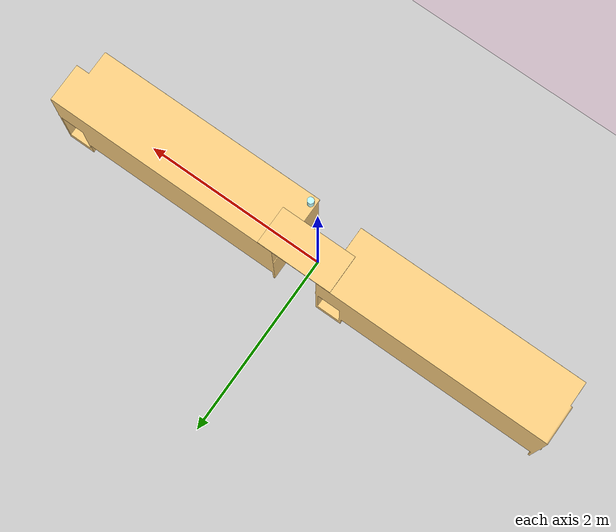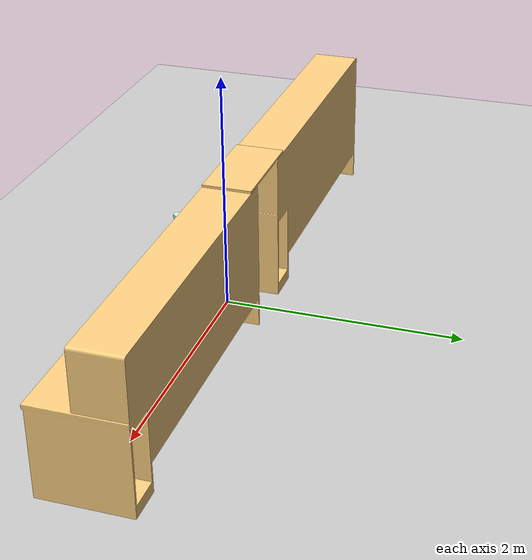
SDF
<sdf version='1.10'>
  <world name='empty'>
    <physics name='1ms' type='ignored'>
      <max_step_size>0.001</max_step_size>
      <real_time_factor>1</real_time_factor>
      <real_time_update_rate>1000</real_time_update_rate>
    </physics>
    <plugin name='gz::sim::systems::Physics' filename='gz-sim-physics-system'/>
    <plugin name='gz::sim::systems::UserCommands' filename='gz-sim-user-commands-system'/>
    <plugin name='gz::sim::systems::SceneBroadcaster' filename='gz-sim-scene-broadcaster-system'/>
    <plugin name='gz::sim::systems::Contact' filename='gz-sim-contact-system'/>
    <gravity>0 0 -9.8000000000000007</gravity>
    <magnetic_field>5.5644999999999998e-06 2.2875799999999999e-05 -4.2388400000000002e-05</magnetic_field>
    <atmosphere type='adiabatic'/>
    <scene>
      <ambient>0.400000006 0.400000006 0.400000006 1</ambient>
      <background>0.699999988 0.699999988 0.699999988 1</background>
      <shadows>true</shadows>
    </scene>
    <model name='ground_plane'>
      <static>true</static>
      <link name='link'>
        <collision name='collision'>
          <geometry>
            <plane>
              <normal>0 0 1</normal>
              <size>100 100</size>
            </plane>
          </geometry>
        </collision>
        <visual name='visual'>
          <geometry>
            <plane>
              <normal>0 0 1</normal>
              <size>100 100</size>
            </plane>
          </geometry>
          <material>
            <ambient>0.800000012 0.800000012 0.800000012 1</ambient>
            <diffuse>0.800000012 0.800000012 0.800000012 1</diffuse>
            <specular>0.800000012 0.800000012 0.800000012 1</specular>
          </material>
        </visual>
        <pose>0 0 0 0 0 0</pose>
        <inertial>
          <pose>0 0 0 0 0 0</pose>
          <mass>1</mass>
          <inertia>
            <ixx>1</ixx>
            <ixy>0</ixy>
            <ixz>0</ixz>
            <iyy>1</iyy>
            <iyz>0</iyz>
            <izz>1</izz>
          </inertia>
        </inertial>
        <enable_wind>false</enable_wind>
      </link>
      <pose>0 0 0 0 0 0</pose>
      <self_collide>false</self_collide>
    </model>
    <model name='daadbot'>
      <joint name='table_joint' type='fixed'>
        <pose>0 0 0 0 0 0</pose>
        <parent>world</parent>
        <child>table_top</child>
      </joint>
      <link name='table_top'>
        <pose>0 0 0 0 0 0</pose>
        <inertial>
          <pose>0.037556625273006503 0.1187234636742408 1.213559996214189 0 0 0</pose>
          <mass>4.3002000000000002</mass>
          <inertia>
            <ixx>0.21852720258128411</ixx>
            <ixy>0.057220156535226371</ixy>
            <ixz>0.04949839947141102</ixz>
            <iyy>0.3122479666049145</iyy>
            <iyz>-0.081760943047373025</iyz>
            <izz>0.38527938088341529</izz>
          </inertia>
        </inertial>
        <collision name='table_top_collision'>
          <pose>0 0 0 0 0 0</pose>
          <geometry>
            <mesh>
              <scale>1 1 1</scale>
              <uri>file:///home/maryam-mahmood/udaadbot_ws/src/daadbot_desc/meshes_lab_table/base_link.STL</uri>
            </mesh>
          </geometry>
        </collision>
        <collision name='table_top_fixed_joint_lump__bottle_link_collision_1'>
          <pose>0.28499999999999998 -0.28999999999999998 0.85999999999999999 0 0 0</pose>
          <geometry>
            <cylinder>
              <length>0.12</length>
              <radius>0.035000000000000003</radius>
            </cylinder>
          </geometry>
          <surface>
            <contact>
              <ode>
                <kp>100000</kp>
                <kd>10</kd>
                <min_depth>0.001</min_depth>
              </ode>
            </contact>
            <friction>
              <ode>
                <mu>0.80000000000000004</mu>
                <mu2>0.80000000000000004</mu2>
              </ode>
            </friction>
          </surface>
        </collision>
        <collision name='table_top_fixed_joint_lump__table_link1_collision_2'>
          <pose>0.0050000000000000001 0.17249999999999999 1.27 -1.5708 4.2351647362715017e-22 -3.1415853071795872</pose>
          <geometry>
            <mesh>
              <scale>1 1 1</scale>
              <uri>file:///home/maryam-mahmood/udaadbot_ws/src/daadbot_desc/meshes_lab_table/link1.STL</uri>
            </mesh>
          </geometry>
        </collision>
        <visual name='table_top_visual'>
          <pose>0 0 0 0 0 0</pose>
          <geometry>
            <mesh>
              <scale>1 1 1</scale>
              <uri>file:///home/maryam-mahmood/udaadbot_ws/src/daadbot_desc/meshes_lab_table/base_link.STL</uri>
            </mesh>
          </geometry>
          <material>
            <diffuse>1 0.825000048 0.512499988 1</diffuse>
            <ambient>1 0.825000048 0.512499988 1</ambient>
          </material>
        </visual>
        <visual name='table_top_fixed_joint_lump__bottle_link_visual_1'>
          <pose>0.28499999999999998 -0.28999999999999998 0.85999999999999999 0 0 0</pose>
          <geometry>
            <cylinder>
              <length>0.12</length>
              <radius>0.035000000000000003</radius>
            </cylinder>
          </geometry>
          <material>
            <diffuse>0.75000006 1 1 1</diffuse>
            <ambient>0.75000006 1 1 1</ambient>
          </material>
        </visual>
        <visual name='table_top_fixed_joint_lump__table_link1_visual_2'>
          <pose>0.0050000000000000001 0.17249999999999999 1.27 -1.5708 4.2351647362715017e-22 -3.1415853071795872</pose>
          <geometry>
            <mesh>
              <scale>1 1 1</scale>
              <uri>file:///home/maryam-mahmood/udaadbot_ws/src/daadbot_desc/meshes_lab_table/link1.STL</uri>
            </mesh>
          </geometry>
          <material>
            <diffuse>1 0.825000048 0.512499988 1</diffuse>
            <ambient>1 0.825000048 0.512499988 1</ambient>
          </material>
        </visual>
        <enable_wind>false</enable_wind>
      </link>
      <frame name='bottle_joint' attached_to='table_top'>
        <pose>0.28499999999999998 -0.28999999999999998 0.75 0 0 0</pose>
      </frame>
      <frame name='bottle_link' attached_to='bottle_joint'>
        <pose>0 0 0 0 0 0</pose>
      </frame>
      <frame name='jnt1' attached_to='table_top'>
        <pose>0.0050000000000000001 0.17249999999999999 1.27 -1.5708 4.2351647362715017e-22 -3.1415853071795872</pose>
      </frame>
      <frame name='table_link1' attached_to='jnt1'>
        <pose>0 0 0 0 0 0</pose>
      </frame>
      <pose>4.9761745682386227e-08 4.5685984995103013e-08 -2.3928289794028501e-08 2.4558369254530882e-08 -2.1499735503159301e-08 1.4446537210906868e-08</pose>
      <static>false</static>
      <self_collide>false</self_collide>
    </model>
    <light name='sun' type='directional'>
      <pose>0 0 0 0 0 0</pose>
      <cast_shadows>true</cast_shadows>
      <intensity>1</intensity>
      <direction>-0.5 0.10000000000000001 -0.90000000000000002</direction>
      <diffuse>0.800000012 0.800000012 0.800000012 1</diffuse>
      <specular>0.200000003 0.200000003 0.200000003 1</specular>
      <attenuation>
        <range>1000</range>
        <linear>0.01</linear>
        <constant>0.90000000000000002</constant>
        <quadratic>0.001</quadratic>
      </attenuation>
      <spot>
        <inner_angle>0</inner_angle>
        <outer_angle>0</outer_angle>
        <falloff>0</falloff>
      </spot>
    </light>
  </world>
</sdf>
